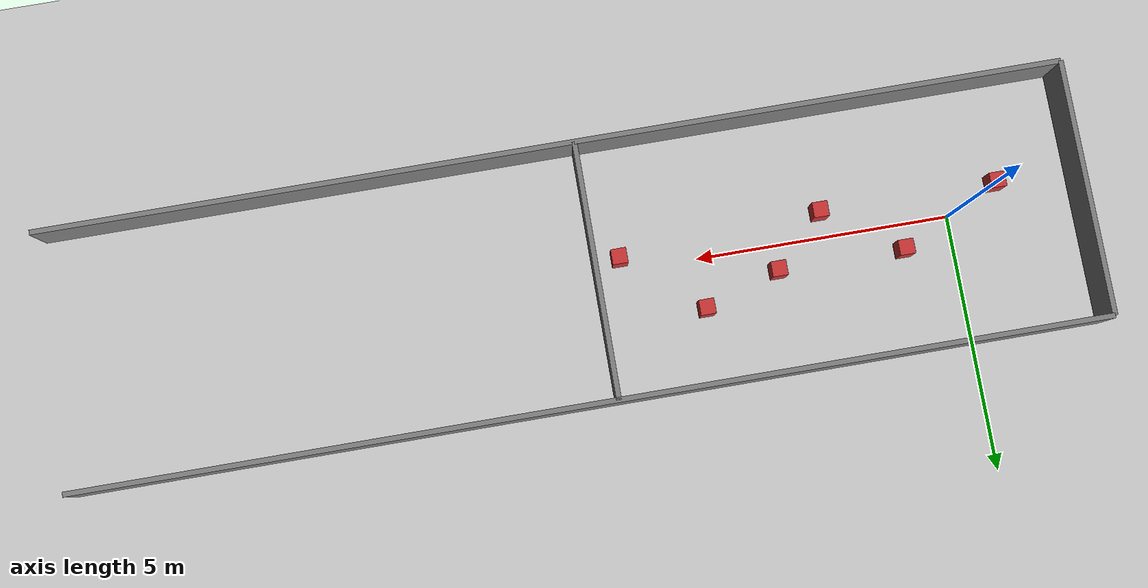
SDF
<?xml version="1.0"?>
<sdf version="1.8">
  <!-- world: 시뮬레이션 전체 환경의 최상위 컨테이너
       name 속성은 ROS2 launch 파일에서 world 인자로 참조됨 -->
  <world name="simple_room">

    <!-- ══════════════════════════════════════════════
         물리 엔진 설정
         ODE(Open Dynamics Engine): Gazebo 기본 물리 엔진
         ══════════════════════════════════════════════ -->
    <physics name="default_physics" type="ode">
      <!-- 시뮬레이션 시간 스텝 [단위: 초]
           0.001 = 1ms → 1kHz 제어 루프와 동기화 가능
           작을수록 정확하지만 CPU 부하 증가
           일반적으로 제어 주기의 1/10 이하로 설정 권장 -->
      <max_step_size>0.001</max_step_size>
      <!-- 실시간 배율
           1.0  = 실제 시간과 동일한 속도로 시뮬레이션
           0.5  = 실제 시간의 절반 속도 (느리게, 더 정확)
           2.0  = 실제 시간의 2배 속도 (빠르게, 부하 있음)
           MPC/EKF 타임스탬프 기반 알고리즘은 1.0 권장 -->
      <real_time_factor>1.0</real_time_factor>
    </physics>

    <!-- 기본 플러그인 -->
    <!-- 물리 연산 시스템: 강체 동역학, 충돌 감지, 마찰력 계산 담당
         이 플러그인 없으면 물체가 공중에 떠 있게 됨 -->
    <plugin filename="libignition-gazebo-physics-system.so"
            name="ignition::gazebo::systems::Physics"/>
    <!-- 센서 시스템: LiDAR, 카메라, IMU 등 센서 데이터 생성 담당
         render_engine: ogre2 = Ignition 기본 렌더러 (카메라/깊이 센서 필수) -->
    <plugin filename="libignition-gazebo-sensors-system.so"
            name="ignition::gazebo::systems::Sensors">
      <render_engine>ogre2</render_engine>
    </plugin>
    <!-- 씬 브로드캐스터: Gazebo GUI(rviz 아님)로 3D 장면 데이터 전송 담당
         이 플러그인 없으면 Gazebo 창에 아무것도 안 보임 -->
    <plugin filename="libignition-gazebo-scene-broadcaster-system.so"
            name="ignition::gazebo::systems::SceneBroadcaster"/>
    <!-- 유저 커맨드 시스템: GUI에서 마우스로 물체 이동/회전/삭제 가능하게 함
         디버깅 시 장애물 위치 실시간 변경할 때 유용 -->
    <plugin filename="libignition-gazebo-user-commands-system.so"
            name="ignition::gazebo::systems::UserCommands"/>
    <plugin filename="libignition-gazebo-imu-system.so"
            name="ignition::gazebo::systems::Imu"/>

    <!-- 조명 -->
    <light name="sun" type="directional">
      <cast_shadows>true</cast_shadows>
      <pose>0 0 10 0 0 0</pose>
      <diffuse>1 1 1 1</diffuse>
      <specular>0.5 0.5 0.5 1</specular>
      <direction>-0.5 0.1 -0.9</direction>
    </light>

    <!-- 바닥 -->
    <model name="ground_plane">
      <!-- static=true: 물리 엔진이 이 모델의 동역학을 계산하지 않음
           벽, 바닥, 고정 장애물에 반드시 설정해야 성능 절약됨 -->
      <static>true</static>
      <!-- link: 물리적으로 하나의 강체(rigid body) 단위
                 하나의 model에 여러 link가 있을 수 있음 (관절로 연결) -->
      <link name="link">
        <collision name="collision">
            <!-- plane: 무한히 넓은 평면 (바닥에 최적)
                 normal: 법선 벡터 0 0 1 = Z축 방향 → 수평 바닥 -->
          <geometry><plane><normal>0 0 1</normal></plane></geometry>
        </collision>
        <!-- visual: 렌더링(화면 표시)에 사용되는 형상
             collision과 다르게 size를 지정해서 유한한 크기로 보이게 함 -->
        <visual name="visual">
          <geometry><plane>
            <normal>0 0 1</normal>
            <size>40 40</size> <!--20m x 20m 바닥 표시-->
          </plane></geometry>
          <material> <!--빛 반사-->
            <ambient>0.8 0.8 0.8 1</ambient>
            <diffuse>0.8 0.8 0.8 1</diffuse>
          </material>
        </visual>
      </link>
    </model>

    <!-- 북쪽 벽 -->
    <model name="wall_north">
      <static>true</static>
      <pose>7.5 2.5 0.5 0 0 0</pose>
      <link name="link">
        <collision name="collision">
          <geometry><box><size>20.0 0.1 1.0</size></box></geometry>
        </collision>
        <visual name="visual">
          <geometry><box><size>20.0 0.1 1.0</size></box></geometry>
          <material><ambient>0.5 0.5 0.5 1</ambient></material>
        </visual>
      </link>
    </model>

    <!-- 남쪽 벽 -->
    <model name="wall_south">
      <static>true</static>
      <pose>7.5 -2.5 0.5 0 0 0</pose>
      <link name="link">
        <collision name="collision">
          <geometry><box><size>20.0 0.1 1.0</size></box></geometry>
        </collision>
        <visual name="visual">
          <geometry><box><size>20.0 0.1 1.0</size></box></geometry>
          <material><ambient>0.5 0.5 0.5 1</ambient></material>
        </visual>
      </link>
    </model>

    <!-- 동쪽 벽 -->
    <model name="wall_east">
      <static>true</static>
      <pose>7.0 0 0.5 0 0 0</pose>
      <link name="link">
        <collision name="collision">
          <geometry><box><size>0.1 5.0 1.0</size></box></geometry>
        </collision>
        <visual name="visual">
          <geometry><box><size>0.1 5.0 1.0</size></box></geometry>
          <material><ambient>0.5 0.5 0.5 1</ambient></material>
        </visual>
      </link>
    </model>

    <!-- 서쪽 벽 -->
    <model name="wall_west">
      <static>true</static>
      <pose>-2.5 0 0.5 0 0 0</pose>
      <link name="link">
        <collision name="collision">
          <geometry><box><size>0.1 5.0 1.0</size></box></geometry>
        </collision>
        <visual name="visual">
          <geometry><box><size>0.1 5.0 1.0</size></box></geometry>
          <material><ambient>0.5 0.5 0.5 1</ambient></material>
        </visual>
      </link>
    </model>

    <!-- 정적 장애물 2개 -->
    <model name="obstacle_1">
      <static>true</static>
      <pose>-1.0 -0.5 0.25 0 0 0</pose>
      <link name="link">
        <collision name="collision">
          <geometry><box><size>0.3 0.3 0.5</size></box></geometry>
        </collision>
        <visual name="visual">
          <geometry><box><size>0.3 0.3 0.5</size></box></geometry>
          <material><ambient>0.8 0.2 0.2 1</ambient></material>
        </visual>
      </link>
    </model>

    <model name="obstacle_2">
      <static>true</static>
      <pose>1.0 0.5 0.25 0 0 0</pose>
      <link name="link">
        <collision name="collision">
          <geometry><box><size>0.3 0.3 0.5</size></box></geometry>
        </collision>
        <visual name="visual">
          <geometry><box><size>0.3 0.3 0.5</size></box></geometry>
          <material><ambient>0.8 0.2 0.2 1</ambient></material>
        </visual>
      </link>
    </model>

        <model name="obstacle_3">
      <static>true</static>
      <pose>2.5 -0.5 0.25 0 0 0</pose>
      <link name="link">
        <collision name="collision">
          <geometry><box><size>0.3 0.3 0.5</size></box></geometry>
        </collision>
        <visual name="visual">
          <geometry><box><size>0.3 0.3 0.5</size></box></geometry>
          <material><ambient>0.8 0.2 0.2 1</ambient></material>
        </visual>
      </link>
    </model>

        <model name="obstacle_4">
      <static>true</static>
      <pose>3.5 0.5 0.25 0 0 0</pose>
      <link name="link">
        <collision name="collision">
          <geometry><box><size>0.3 0.3 0.5</size></box></geometry>
        </collision>
        <visual name="visual">
          <geometry><box><size>0.3 0.3 0.5</size></box></geometry>
          <material><ambient>0.8 0.2 0.2 1</ambient></material>
        </visual>
      </link>
    </model>

        <model name="obstacle_5">
      <static>true</static>
      <pose>5.0 1 0.25 0 0 0</pose>
      <link name="link">
        <collision name="collision">
          <geometry><box><size>0.3 0.3 0.5</size></box></geometry>
        </collision>
        <visual name="visual">
          <geometry><box><size>0.3 0.3 0.5</size></box></geometry>
          <material><ambient>0.8 0.2 0.2 1</ambient></material>
        </visual>
      </link>
    </model>

        <model name="obstacle_6">
      <static>true</static>
      <pose>6.5 -0.25 0.25 0 0 0</pose>
      <link name="link">
        <collision name="collision">
          <geometry><box><size>0.3 0.3 0.5</size></box></geometry>
        </collision>
        <visual name="visual">
          <geometry><box><size>0.3 0.3 0.5</size></box></geometry>
          <material><ambient>0.8 0.2 0.2 1</ambient></material>
        </visual>
      </link>
    </model>

  </world>
</sdf>
